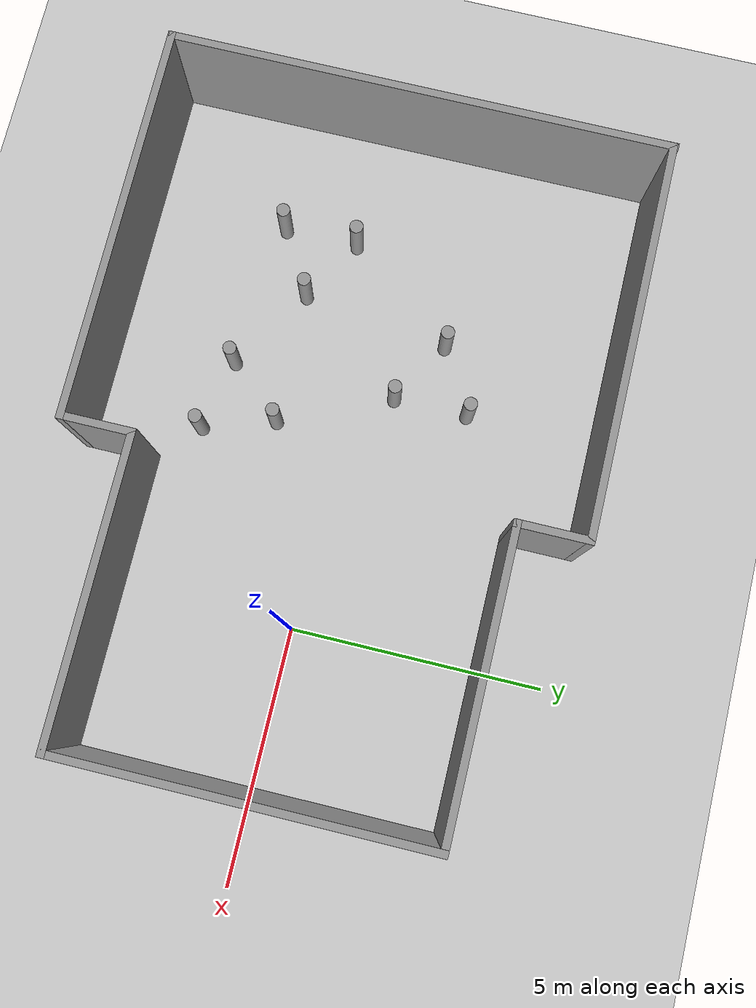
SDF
<sdf version="1.7">
 <world name="default">
  <light name="sun" type="directional">
   <pose>0 0 10 0 -0 0</pose>
   <diffuse>0.8 0.8 0.8 1</diffuse>
   <specular>0.2 0.2 0.2 1</specular>
   <attenuation>
    <range>1000</range>
    <constant>0.9</constant>
    <linear>0.01</linear>
    <quadratic>0.001</quadratic>
   </attenuation>
   <direction>-0.5 0.1 -0.9</direction>
   <spot><inner_angle>0</inner_angle><outer_angle>0</outer_angle><falloff>0</falloff></spot>
  </light>
  <model name="ground_plane">
   <static>1</static>
   <link name="link">
    <collision name="collision">
     <geometry><plane><normal>0 0 1</normal><size>100 100</size></plane></geometry>
     <surface>
      <contact><collide_bitmask>65535</collide_bitmask></contact>
      <friction><ode><mu>100</mu><mu2>50</mu2></ode></friction>
     </surface>
    </collision>
    <visual name="visual">
     <cast_shadows>0</cast_shadows>
     <geometry><plane><normal>0 0 1</normal><size>100 100</size></plane></geometry>
     <material>
      <script><uri>file://media/materials/scripts/gazebo.material</uri><name>Gazebo/Grey</name></script>
     </material>
    </visual>
   </link>
  </model>
  <gravity>0 0 -9.8</gravity>
  <magnetic_field>6e-06 2.3e-05 -4.2e-05</magnetic_field>
  <atmosphere type="adiabatic"/>
  <physics type="ode">
   <max_step_size>0.001</max_step_size>
   <real_time_factor>1</real_time_factor>
   <real_time_update_rate>1000</real_time_update_rate>
  </physics>
  <scene><ambient>0.4 0.4 0.4 1</ambient><background>0.7 0.7 0.7 1</background><shadows>1</shadows></scene>
  <spherical_coordinates>
   <surface_model>EARTH_WGS84</surface_model>
   <latitude_deg>0</latitude_deg>
   <longitude_deg>0</longitude_deg>
   <elevation>0</elevation>
   <heading_deg>0</heading_deg>
  </spherical_coordinates>
  <model name="two_rooms">
   <pose>-3.61497 0.090001 0 0 -0 0</pose>
   <link name="Wall_15">
    <collision name="Wall_15_Collision">
     <geometry><box><size>10 0.15 2.5</size></box></geometry>
     <pose>0 0 1.25 0 -0 0</pose>
    </collision>
    <visual name="Wall_15_Visual">
     <pose>0 0 1.25 0 -0 0</pose>
     <geometry><box><size>10 0.15 2.5</size></box></geometry>
     <material>
      <script><uri>file://media/materials/scripts/gazebo.material</uri><name>Gazebo/Grey</name></script>
      <ambient>1 1 1 1</ambient>
     </material>
     <meta><layer>0</layer></meta>
    </visual>
    <pose>-6.78984 0.01 0 0 -0 -1.5708</pose>
   </link>
   <link name="Wall_16">
    <collision name="Wall_16_Collision">
     <geometry><box><size>7.88065 0.15 2.5</size></box></geometry>
     <pose>0 0 1.25 0 -0 0</pose>
    </collision>
    <visual name="Wall_16_Visual">
     <pose>0 0 1.25 0 -0 0</pose>
     <geometry><box><size>7.88065 0.15 2.5</size></box></geometry>
     <material>
      <script><uri>file://media/materials/scripts/gazebo.material</uri><name>Gazebo/Grey</name></script>
      <ambient>1 1 1 1</ambient>
     </material>
     <meta><layer>0</layer></meta>
    </visual>
    <pose>-2.92484 -4.935 0 0 -0 0</pose>
   </link>
   <link name="Wall_20">
    <collision name="Wall_20_Collision">
     <geometry><box><size>7.88065 0.15 2.5</size></box></geometry>
     <pose>0 0 1.25 0 -0 0</pose>
    </collision>
    <visual name="Wall_20_Visual">
     <pose>0 0 1.25 0 -0 0</pose>
     <geometry><box><size>7.88065 0.15 2.5</size></box></geometry>
     <material>
      <script><uri>file://media/materials/scripts/gazebo.material</uri><name>Gazebo/Grey</name></script>
      <ambient>1 1 1 1</ambient>
     </material>
     <meta><layer>0</layer></meta>
    </visual>
    <pose>-2.92484 4.915 0 0 -0 0</pose>
   </link>
   <link name="Wall_36">
    <collision name="Wall_36_Collision">
     <geometry><box><size>1.5 0.15 2.5</size></box></geometry>
     <pose>0 0 1.25 0 -0 0</pose>
    </collision>
    <visual name="Wall_36_Visual">
     <pose>0 0 1.25 0 -0 0</pose>
     <geometry><box><size>1.5 0.15 2.5</size></box></geometry>
     <material>
      <script><uri>file://media/materials/scripts/gazebo.material</uri><name>Gazebo/Grey</name></script>
      <ambient>1 1 1 1</ambient>
     </material>
     <meta><layer>0</layer></meta>
    </visual>
    <pose>0.940161 -4.26 0 0 -0 1.5708</pose>
   </link>
   <link name="Wall_39">
    <collision name="Wall_39_Collision">
     <geometry><box><size>6 0.15 2.5</size></box></geometry>
     <pose>0 0 1.25 0 -0 0</pose>
    </collision>
    <visual name="Wall_39_Visual">
     <pose>0 0 1.25 0 -0 0</pose>
     <geometry><box><size>6 0.15 2.5</size></box></geometry>
     <material>
      <script><uri>file://media/materials/scripts/gazebo.material</uri><name>Gazebo/Grey</name></script>
      <ambient>1 1 1 1</ambient>
     </material>
     <meta><layer>0</layer></meta>
    </visual>
    <pose>3.86516 -3.585 0 0 -0 0</pose>
   </link>
   <link name="Wall_41">
    <collision name="Wall_41_Collision">
     <geometry><box><size>1.5 0.15 2.5</size></box></geometry>
     <pose>0 0 1.25 0 -0 0</pose>
    </collision>
    <visual name="Wall_41_Visual">
     <pose>0 0 1.25 0 -0 0</pose>
     <geometry><box><size>1.5 0.15 2.5</size></box></geometry>
     <material>
      <script><uri>file://media/materials/scripts/gazebo.material</uri><name>Gazebo/Grey</name></script>
      <ambient>1 1 1 1</ambient>
     </material>
     <meta><layer>0</layer></meta>
    </visual>
    <pose>0.940161 4.24 0 0 -0 -1.5708</pose>
   </link>
   <link name="Wall_42">
    <collision name="Wall_42_Collision">
     <geometry><box><size>6 0.15 2.5</size></box></geometry>
     <pose>0 0 1.25 0 -0 0</pose>
    </collision>
    <visual name="Wall_42_Visual">
     <pose>0 0 1.25 0 -0 0</pose>
     <geometry><box><size>6 0.15 2.5</size></box></geometry>
     <material>
      <script><uri>file://media/materials/scripts/gazebo.material</uri><name>Gazebo/Grey</name></script>
      <ambient>1 1 1 1</ambient>
     </material>
     <meta><layer>0</layer></meta>
    </visual>
    <pose>3.86516 3.565 0 0 -0 0</pose>
   </link>
   <link name="Wall_43">
    <collision name="Wall_43_Collision">
     <geometry><box><size>7.25 0.15 2.5</size></box></geometry>
     <pose>0 0 1.25 0 -0 0</pose>
    </collision>
    <visual name="Wall_43_Visual">
     <pose>0 0 1.25 0 -0 0</pose>
     <geometry><box><size>7.25 0.15 2.5</size></box></geometry>
     <material>
      <script><uri>file://media/materials/scripts/gazebo.material</uri><name>Gazebo/Grey</name></script>
      <ambient>1 1 1 1</ambient>
     </material>
     <meta><layer>0</layer></meta>
    </visual>
    <pose>6.79016 0.015 0 0 -0 -1.5708</pose>
   </link>
   <static>1</static>
  </model>
  <model name="smaller_cylinder">
   <model name="smaller_cylinder_1">
    <link name="link">
     <inertial>
      <mass>0.0872829</mass>
      <inertia>
       <ixx>0.0108064</ixx>
       <ixy>0</ixy>
       <ixz>0</ixz>
       <iyy>0.0108064</iyy>
       <iyz>0</iyz>
       <izz>0.000796093</izz>
      </inertia>
     </inertial>
     <visual name="visual">
      <geometry><cylinder><radius>0.135062</radius><length>1.19624</length></cylinder></geometry>
      <material>
       <script><name>Gazebo/Grey</name><uri>file://media/materials/scripts/gazebo.material</uri></script>
       <shader type="pixel"/>
      </material>
     </visual>
     <collision name="collision">
      <geometry><cylinder><radius>0.135062</radius><length>1.19624</length></cylinder></geometry>
      <surface>
       <friction>
        <ode><mu>1</mu><mu2>1</mu2><fdir1>0 0 0</fdir1><slip1>0</slip1><slip2>0</slip2></ode>
        <torsional>
         <coefficient>1</coefficient>
         <patch_radius>0</patch_radius>
         <surface_radius>0</surface_radius>
         <use_patch_radius>1</use_patch_radius>
         <ode><slip>0</slip></ode>
        </torsional>
       </friction>
       <bounce><restitution_coefficient>0</restitution_coefficient><threshold>1e+06</threshold></bounce>
       <contact>
        <collide_without_contact>0</collide_without_contact>
        <collide_without_contact_bitmask>1</collide_without_contact_bitmask>
        <collide_bitmask>1</collide_bitmask>
        <ode>
         <soft_cfm>0</soft_cfm>
         <soft_erp>0.2</soft_erp>
         <kp>1e+13</kp>
         <kd>1</kd>
         <max_vel>0.01</max_vel>
         <min_depth>0</min_depth>
        </ode>
        <bullet>
         <split_impulse>1</split_impulse>
         <split_impulse_penetration_threshold>-0.01</split_impulse_penetration_threshold>
         <soft_cfm>0</soft_cfm>
         <soft_erp>0.2</soft_erp>
         <kp>1e+13</kp>
         <kd>1</kd>
        </bullet>
       </contact>
      </surface>
     </collision>
    </link>
    <static>0</static>
    <pose>0.044198 -0.101528 0 0 -0 0</pose>
   </model>
   <static>1</static>
   <allow_auto_disable>0</allow_auto_disable>
   <pose>-8 -2 0.598119 0 -0 0</pose>
  </model>
  <model name="smaller_cylinder_0">
   <model name="smaller_cylinder_1">
    <link name="link">
     <inertial>
      <mass>0.0872829</mass>
      <inertia>
       <ixx>0.0108064</ixx>
       <ixy>0</ixy>
       <ixz>0</ixz>
       <iyy>0.0108064</iyy>
       <iyz>0</iyz>
       <izz>0.000796093</izz>
      </inertia>
     </inertial>
     <visual name="visual">
      <geometry><cylinder><radius>0.135062</radius><length>1.19624</length></cylinder></geometry>
      <material>
       <script><name>Gazebo/Grey</name><uri>file://media/materials/scripts/gazebo.material</uri></script>
       <shader type="pixel"/>
      </material>
     </visual>
     <collision name="collision">
      <geometry><cylinder><radius>0.135062</radius><length>1.19624</length></cylinder></geometry>
      <surface>
       <friction>
        <ode><mu>1</mu><mu2>1</mu2><fdir1>0 0 0</fdir1><slip1>0</slip1><slip2>0</slip2></ode>
        <torsional>
         <coefficient>1</coefficient>
         <patch_radius>0</patch_radius>
         <surface_radius>0</surface_radius>
         <use_patch_radius>1</use_patch_radius>
         <ode><slip>0</slip></ode>
        </torsional>
       </friction>
       <bounce><restitution_coefficient>0</restitution_coefficient><threshold>1e+06</threshold></bounce>
       <contact>
        <collide_without_contact>0</collide_without_contact>
        <collide_without_contact_bitmask>1</collide_without_contact_bitmask>
        <collide_bitmask>1</collide_bitmask>
        <ode>
         <soft_cfm>0</soft_cfm>
         <soft_erp>0.2</soft_erp>
         <kp>1e+13</kp>
         <kd>1</kd>
         <max_vel>0.01</max_vel>
         <min_depth>0</min_depth>
        </ode>
        <bullet>
         <split_impulse>1</split_impulse>
         <split_impulse_penetration_threshold>-0.01</split_impulse_penetration_threshold>
         <soft_cfm>0</soft_cfm>
         <soft_erp>0.2</soft_erp>
         <kp>1e+13</kp>
         <kd>1</kd>
        </bullet>
       </contact>
      </surface>
     </collision>
    </link>
    <static>0</static>
    <pose>0.044198 -0.101528 0 0 -0 0</pose>
   </model>
   <static>1</static>
   <allow_auto_disable>0</allow_auto_disable>
   <pose>-8 -0.5 0.598119 0 -0 0</pose>
  </model>
  <model name="smaller_cylinder_clone">
   <model name="smaller_cylinder_1">
    <link name="link">
     <inertial>
      <mass>0.0872829</mass>
      <inertia>
       <ixx>0.0108064</ixx>
       <ixy>0</ixy>
       <ixz>0</ixz>
       <iyy>0.0108064</iyy>
       <iyz>0</iyz>
       <izz>0.000796093</izz>
      </inertia>
     </inertial>
     <visual name="visual">
      <geometry><cylinder><radius>0.135062</radius><length>1.19624</length></cylinder></geometry>
      <material>
       <script><name>Gazebo/Grey</name><uri>file://media/materials/scripts/gazebo.material</uri></script>
       <shader type="pixel"/>
      </material>
     </visual>
     <collision name="collision">
      <geometry><cylinder><radius>0.135062</radius><length>1.19624</length></cylinder></geometry>
      <surface>
       <friction>
        <ode><mu>1</mu><mu2>1</mu2><fdir1>0 0 0</fdir1><slip1>0</slip1><slip2>0</slip2></ode>
        <torsional>
         <coefficient>1</coefficient>
         <patch_radius>0</patch_radius>
         <surface_radius>0</surface_radius>
         <use_patch_radius>1</use_patch_radius>
         <ode><slip>0</slip></ode>
        </torsional>
       </friction>
       <bounce><restitution_coefficient>0</restitution_coefficient><threshold>1e+06</threshold></bounce>
       <contact>
        <collide_without_contact>0</collide_without_contact>
        <collide_without_contact_bitmask>1</collide_without_contact_bitmask>
        <collide_bitmask>1</collide_bitmask>
        <ode>
         <soft_cfm>0</soft_cfm>
         <soft_erp>0.2</soft_erp>
         <kp>1e+13</kp>
         <kd>1</kd>
         <max_vel>0.01</max_vel>
         <min_depth>0</min_depth>
        </ode>
        <bullet>
         <split_impulse>1</split_impulse>
         <split_impulse_penetration_threshold>-0.01</split_impulse_penetration_threshold>
         <soft_cfm>0</soft_cfm>
         <soft_erp>0.2</soft_erp>
         <kp>1e+13</kp>
         <kd>1</kd>
        </bullet>
       </contact>
      </surface>
     </collision>
    </link>
    <static>0</static>
    <pose>0.044198 -0.101528 0 0 -0 0</pose>
   </model>
   <static>1</static>
   <allow_auto_disable>0</allow_auto_disable>
   <pose>-6.7 -1.25 0.598117 0 -0 0</pose>
  </model>
  <model name="smaller_cylinder_clone_0">
   <model name="smaller_cylinder_1">
    <link name="link">
     <inertial>
      <mass>0.0872829</mass>
      <inertia>
       <ixx>0.0108064</ixx>
       <ixy>0</ixy>
       <ixz>0</ixz>
       <iyy>0.0108064</iyy>
       <iyz>0</iyz>
       <izz>0.000796093</izz>
      </inertia>
     </inertial>
     <visual name="visual">
      <geometry><cylinder><radius>0.135062</radius><length>1.19624</length></cylinder></geometry>
      <material>
       <script><name>Gazebo/Grey</name><uri>file://media/materials/scripts/gazebo.material</uri></script>
       <shader type="pixel"/>
      </material>
     </visual>
     <collision name="collision">
      <geometry><cylinder><radius>0.135062</radius><length>1.19624</length></cylinder></geometry>
      <surface>
       <friction>
        <ode><mu>1</mu><mu2>1</mu2><fdir1>0 0 0</fdir1><slip1>0</slip1><slip2>0</slip2></ode>
        <torsional>
         <coefficient>1</coefficient>
         <patch_radius>0</patch_radius>
         <surface_radius>0</surface_radius>
         <use_patch_radius>1</use_patch_radius>
         <ode><slip>0</slip></ode>
        </torsional>
       </friction>
       <bounce><restitution_coefficient>0</restitution_coefficient><threshold>1e+06</threshold></bounce>
       <contact>
        <collide_without_contact>0</collide_without_contact>
        <collide_without_contact_bitmask>1</collide_without_contact_bitmask>
        <collide_bitmask>1</collide_bitmask>
        <ode>
         <soft_cfm>0</soft_cfm>
         <soft_erp>0.2</soft_erp>
         <kp>1e+13</kp>
         <kd>1</kd>
         <max_vel>0.01</max_vel>
         <min_depth>0</min_depth>
        </ode>
        <bullet>
         <split_impulse>1</split_impulse>
         <split_impulse_penetration_threshold>-0.01</split_impulse_penetration_threshold>
         <soft_cfm>0</soft_cfm>
         <soft_erp>0.2</soft_erp>
         <kp>1e+13</kp>
         <kd>1</kd>
        </bullet>
       </contact>
      </surface>
     </collision>
    </link>
    <static>0</static>
    <pose>0.044198 -0.101528 0 0 -0 0</pose>
   </model>
   <static>1</static>
   <allow_auto_disable>0</allow_auto_disable>
   <pose>-5 1 0.598118 0 -0 0</pose>
  </model>
  <model name="smaller_cylinder_clone_0_clone">
   <model name="smaller_cylinder_1">
    <link name="link">
     <inertial>
      <mass>0.0872829</mass>
      <inertia>
       <ixx>0.0108064</ixx>
       <ixy>0</ixy>
       <ixz>0</ixz>
       <iyy>0.0108064</iyy>
       <iyz>0</iyz>
       <izz>0.000796093</izz>
      </inertia>
     </inertial>
     <visual name="visual">
      <geometry><cylinder><radius>0.135062</radius><length>1.19624</length></cylinder></geometry>
      <material>
       <script><name>Gazebo/Grey</name><uri>file://media/materials/scripts/gazebo.material</uri></script>
       <shader type="pixel"/>
      </material>
     </visual>
     <collision name="collision">
      <geometry><cylinder><radius>0.135062</radius><length>1.19624</length></cylinder></geometry>
      <surface>
       <friction>
        <ode><mu>1</mu><mu2>1</mu2><fdir1>0 0 0</fdir1><slip1>0</slip1><slip2>0</slip2></ode>
        <torsional>
         <coefficient>1</coefficient>
         <patch_radius>0</patch_radius>
         <surface_radius>0</surface_radius>
         <use_patch_radius>1</use_patch_radius>
         <ode><slip>0</slip></ode>
        </torsional>
       </friction>
       <bounce><restitution_coefficient>0</restitution_coefficient><threshold>1e+06</threshold></bounce>
       <contact>
        <collide_without_contact>0</collide_without_contact>
        <collide_without_contact_bitmask>1</collide_without_contact_bitmask>
        <collide_bitmask>1</collide_bitmask>
        <ode>
         <soft_cfm>0</soft_cfm>
         <soft_erp>0.2</soft_erp>
         <kp>1e+13</kp>
         <kd>1</kd>
         <max_vel>0.01</max_vel>
         <min_depth>0</min_depth>
        </ode>
        <bullet>
         <split_impulse>1</split_impulse>
         <split_impulse_penetration_threshold>-0.01</split_impulse_penetration_threshold>
         <soft_cfm>0</soft_cfm>
         <soft_erp>0.2</soft_erp>
         <kp>1e+13</kp>
         <kd>1</kd>
        </bullet>
       </contact>
      </surface>
     </collision>
    </link>
    <static>0</static>
    <pose>0.044198 -0.101528 0 0 -0 0</pose>
   </model>
   <static>1</static>
   <allow_auto_disable>0</allow_auto_disable>
   <pose>-6.299 1.75 0.598112 -0 -0 -0</pose>
  </model>
  <model name="smaller_cylinder_clone_0_clone_0">
   <model name="smaller_cylinder_1">
    <link name="link">
     <inertial>
      <mass>0.0872829</mass>
      <inertia>
       <ixx>0.0108064</ixx>
       <ixy>0</ixy>
       <ixz>0</ixz>
       <iyy>0.0108064</iyy>
       <iyz>0</iyz>
       <izz>0.000796093</izz>
      </inertia>
     </inertial>
     <visual name="visual">
      <geometry><cylinder><radius>0.135062</radius><length>1.19624</length></cylinder></geometry>
      <material>
       <script><name>Gazebo/Grey</name><uri>file://media/materials/scripts/gazebo.material</uri></script>
       <shader type="pixel"/>
      </material>
     </visual>
     <collision name="collision">
      <geometry><cylinder><radius>0.135062</radius><length>1.19624</length></cylinder></geometry>
      <surface>
       <friction>
        <ode><mu>1</mu><mu2>1</mu2><fdir1>0 0 0</fdir1><slip1>0</slip1><slip2>0</slip2></ode>
        <torsional>
         <coefficient>1</coefficient>
         <patch_radius>0</patch_radius>
         <surface_radius>0</surface_radius>
         <use_patch_radius>1</use_patch_radius>
         <ode><slip>0</slip></ode>
        </torsional>
       </friction>
       <bounce><restitution_coefficient>0</restitution_coefficient><threshold>1e+06</threshold></bounce>
       <contact>
        <collide_without_contact>0</collide_without_contact>
        <collide_without_contact_bitmask>1</collide_without_contact_bitmask>
        <collide_bitmask>1</collide_bitmask>
        <ode>
         <soft_cfm>0</soft_cfm>
         <soft_erp>0.2</soft_erp>
         <kp>1e+13</kp>
         <kd>1</kd>
         <max_vel>0.01</max_vel>
         <min_depth>0</min_depth>
        </ode>
        <bullet>
         <split_impulse>1</split_impulse>
         <split_impulse_penetration_threshold>-0.01</split_impulse_penetration_threshold>
         <soft_cfm>0</soft_cfm>
         <soft_erp>0.2</soft_erp>
         <kp>1e+13</kp>
         <kd>1</kd>
        </bullet>
       </contact>
      </surface>
     </collision>
    </link>
    <static>0</static>
    <pose>0.044198 -0.101528 0 0 -0 0</pose>
   </model>
   <static>1</static>
   <allow_auto_disable>0</allow_auto_disable>
   <pose>-5 2.5 0.598118 0 -0 0</pose>
  </model>
  <model name="smaller_cylinder_clone_0_clone_1">
   <model name="smaller_cylinder_1">
    <link name="link">
     <inertial>
      <mass>0.0872829</mass>
      <inertia>
       <ixx>0.0108064</ixx>
       <ixy>0</ixy>
       <ixz>0</ixz>
       <iyy>0.0108064</iyy>
       <iyz>0</iyz>
       <izz>0.000796093</izz>
      </inertia>
     </inertial>
     <visual name="visual">
      <geometry><cylinder><radius>0.135062</radius><length>1.19624</length></cylinder></geometry>
      <material>
       <script><name>Gazebo/Grey</name><uri>file://media/materials/scripts/gazebo.material</uri></script>
       <shader type="pixel"/>
      </material>
     </visual>
     <collision name="collision">
      <geometry><cylinder><radius>0.135062</radius><length>1.19624</length></cylinder></geometry>
      <surface>
       <friction>
        <ode><mu>1</mu><mu2>1</mu2><fdir1>0 0 0</fdir1><slip1>0</slip1><slip2>0</slip2></ode>
        <torsional>
         <coefficient>1</coefficient>
         <patch_radius>0</patch_radius>
         <surface_radius>0</surface_radius>
         <use_patch_radius>1</use_patch_radius>
         <ode><slip>0</slip></ode>
        </torsional>
       </friction>
       <bounce><restitution_coefficient>0</restitution_coefficient><threshold>1e+06</threshold></bounce>
       <contact>
        <collide_without_contact>0</collide_without_contact>
        <collide_without_contact_bitmask>1</collide_without_contact_bitmask>
        <collide_bitmask>1</collide_bitmask>
        <ode>
         <soft_cfm>0</soft_cfm>
         <soft_erp>0.2</soft_erp>
         <kp>1e+13</kp>
         <kd>1</kd>
         <max_vel>0.01</max_vel>
         <min_depth>0</min_depth>
        </ode>
        <bullet>
         <split_impulse>1</split_impulse>
         <split_impulse_penetration_threshold>-0.01</split_impulse_penetration_threshold>
         <soft_cfm>0</soft_cfm>
         <soft_erp>0.2</soft_erp>
         <kp>1e+13</kp>
         <kd>1</kd>
        </bullet>
       </contact>
      </surface>
     </collision>
    </link>
    <static>0</static>
    <pose>0.044198 -0.101528 0 0 -0 0</pose>
   </model>
   <static>1</static>
   <allow_auto_disable>0</allow_auto_disable>
   <pose>-4 -1.2 0.598112 -0 -0 -0</pose>
  </model>
  <model name="smaller_cylinder_clone_0_clone_2">
   <model name="smaller_cylinder_1">
    <link name="link">
     <inertial>
      <mass>0.0872829</mass>
      <inertia>
       <ixx>0.0108064</ixx>
       <ixy>0</ixy>
       <ixz>0</ixz>
       <iyy>0.0108064</iyy>
       <iyz>0</iyz>
       <izz>0.000796093</izz>
      </inertia>
     </inertial>
     <visual name="visual">
      <geometry><cylinder><radius>0.135062</radius><length>1.19624</length></cylinder></geometry>
      <material>
       <script><name>Gazebo/Grey</name><uri>file://media/materials/scripts/gazebo.material</uri></script>
       <shader type="pixel"/>
      </material>
     </visual>
     <collision name="collision">
      <geometry><cylinder><radius>0.135062</radius><length>1.19624</length></cylinder></geometry>
      <surface>
       <friction>
        <ode><mu>1</mu><mu2>1</mu2><fdir1>0 0 0</fdir1><slip1>0</slip1><slip2>0</slip2></ode>
        <torsional>
         <coefficient>1</coefficient>
         <patch_radius>0</patch_radius>
         <surface_radius>0</surface_radius>
         <use_patch_radius>1</use_patch_radius>
         <ode><slip>0</slip></ode>
        </torsional>
       </friction>
       <bounce><restitution_coefficient>0</restitution_coefficient><threshold>1e+06</threshold></bounce>
       <contact>
        <collide_without_contact>0</collide_without_contact>
        <collide_without_contact_bitmask>1</collide_without_contact_bitmask>
        <collide_bitmask>1</collide_bitmask>
        <ode>
         <soft_cfm>0</soft_cfm>
         <soft_erp>0.2</soft_erp>
         <kp>1e+13</kp>
         <kd>1</kd>
         <max_vel>0.01</max_vel>
         <min_depth>0</min_depth>
        </ode>
        <bullet>
         <split_impulse>1</split_impulse>
         <split_impulse_penetration_threshold>-0.01</split_impulse_penetration_threshold>
         <soft_cfm>0</soft_cfm>
         <soft_erp>0.2</soft_erp>
         <kp>1e+13</kp>
         <kd>1</kd>
        </bullet>
       </contact>
      </surface>
     </collision>
    </link>
    <static>0</static>
    <pose>0.044198 -0.101528 0 0 -0 0</pose>
   </model>
   <static>1</static>
   <allow_auto_disable>0</allow_auto_disable>
   <pose>-5 -2.318 0.598118 0 -0 0</pose>
  </model>
  <model name="smaller_cylinder_clone_0_clone_3">
   <model name="smaller_cylinder_1">
    <link name="link">
     <inertial>
      <mass>0.0872829</mass>
      <inertia>
       <ixx>0.0108064</ixx>
       <ixy>0</ixy>
       <ixz>0</ixz>
       <iyy>0.0108064</iyy>
       <iyz>0</iyz>
       <izz>0.000796093</izz>
      </inertia>
     </inertial>
     <visual name="visual">
      <geometry><cylinder><radius>0.135062</radius><length>1.19624</length></cylinder></geometry>
      <material>
       <script><name>Gazebo/Grey</name><uri>file://media/materials/scripts/gazebo.material</uri></script>
       <shader type="pixel"/>
      </material>
     </visual>
     <collision name="collision">
      <geometry><cylinder><radius>0.135062</radius><length>1.19624</length></cylinder></geometry>
      <surface>
       <friction>
        <ode><mu>1</mu><mu2>1</mu2><fdir1>0 0 0</fdir1><slip1>0</slip1><slip2>0</slip2></ode>
        <torsional>
         <coefficient>1</coefficient>
         <patch_radius>0</patch_radius>
         <surface_radius>0</surface_radius>
         <use_patch_radius>1</use_patch_radius>
         <ode><slip>0</slip></ode>
        </torsional>
       </friction>
       <bounce><restitution_coefficient>0</restitution_coefficient><threshold>1e+06</threshold></bounce>
       <contact>
        <collide_without_contact>0</collide_without_contact>
        <collide_without_contact_bitmask>1</collide_without_contact_bitmask>
        <collide_bitmask>1</collide_bitmask>
        <ode>
         <soft_cfm>0</soft_cfm>
         <soft_erp>0.2</soft_erp>
         <kp>1e+13</kp>
         <kd>1</kd>
         <max_vel>0.01</max_vel>
         <min_depth>0</min_depth>
        </ode>
        <bullet>
         <split_impulse>1</split_impulse>
         <split_impulse_penetration_threshold>-0.01</split_impulse_penetration_threshold>
         <soft_cfm>0</soft_cfm>
         <soft_erp>0.2</soft_erp>
         <kp>1e+13</kp>
         <kd>1</kd>
        </bullet>
       </contact>
      </surface>
     </collision>
    </link>
    <static>0</static>
    <pose>0.044198 -0.101528 0 0 -0 0</pose>
   </model>
   <static>1</static>
   <allow_auto_disable>0</allow_auto_disable>
   <pose>-3.532 -2.625 0.598113 -0 -0 -0</pose>
  </model>
 </world>
</sdf>
